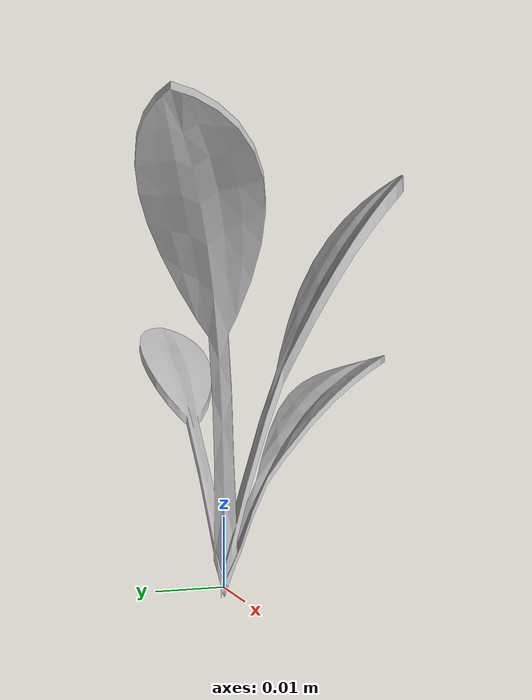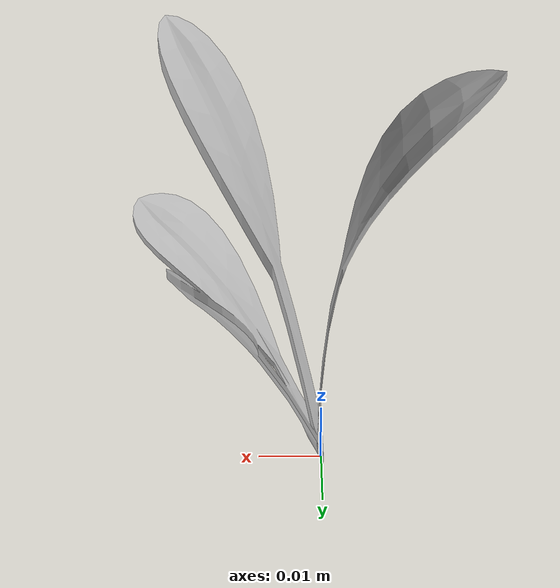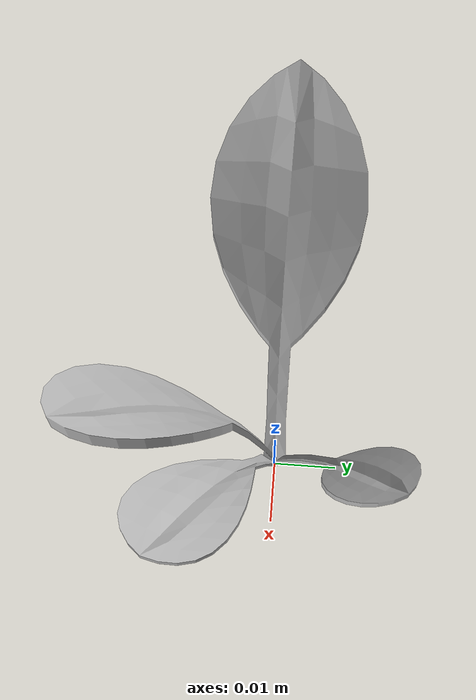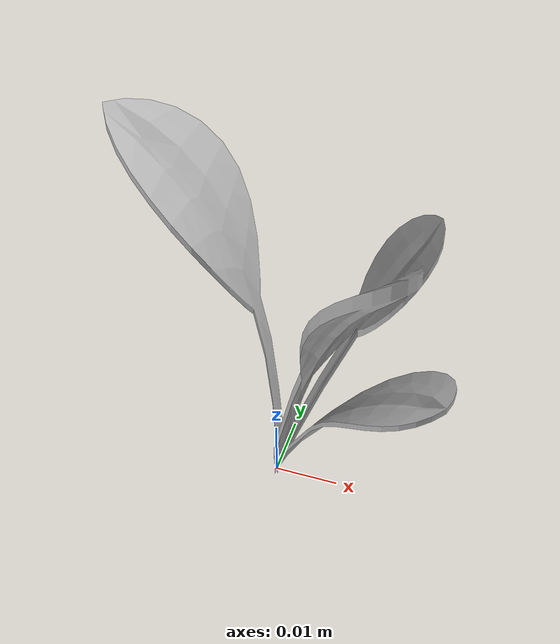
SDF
<sdf version="1.6">
  <model name="sugar_beet_0">
    <static>true</static>
    <link name="body">
      <visual name="visual">
        <geometry>
          <mesh>
            <uri>file://sugar_beet_0/media/sugar_beet.dae</uri>
          </mesh>
        </geometry>
      </visual>
    </link>
  </model>
</sdf>
